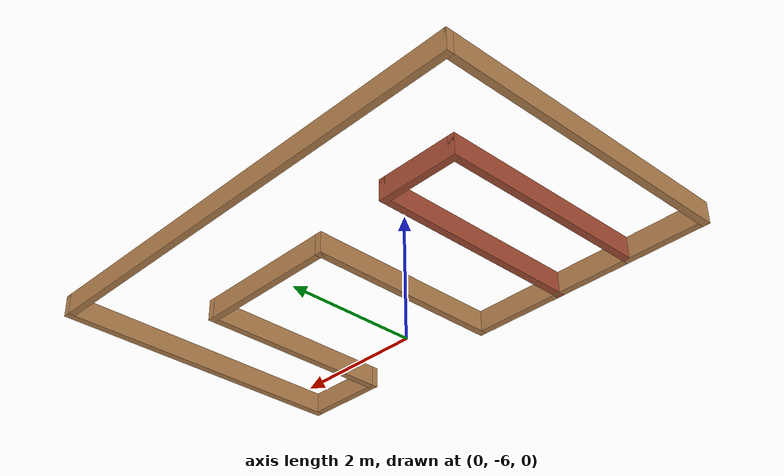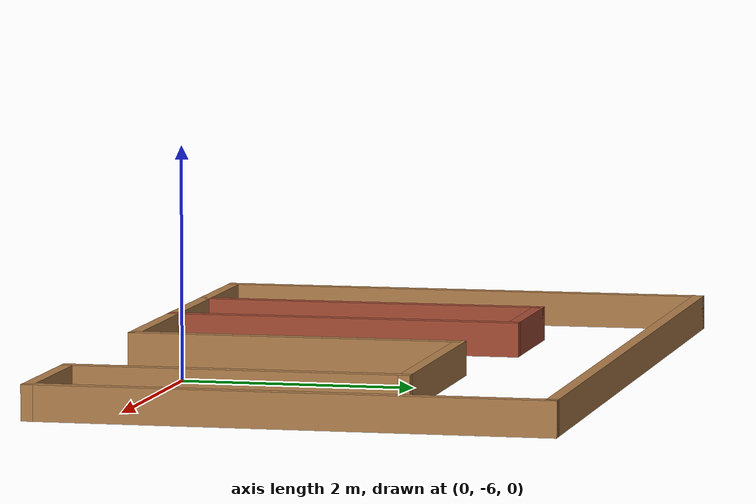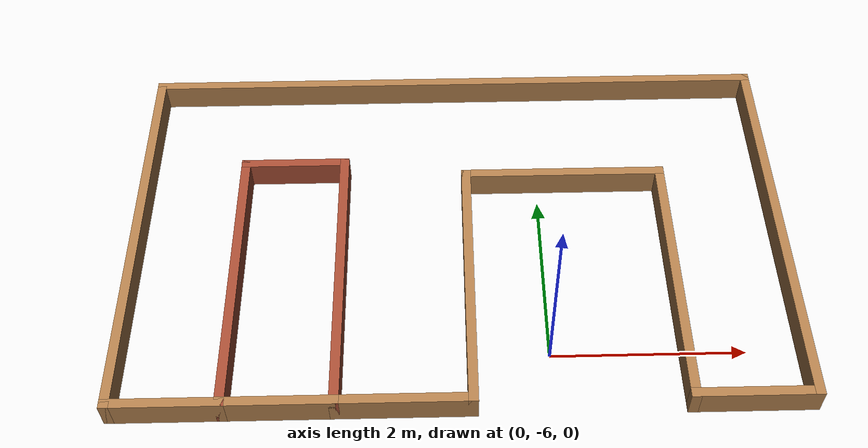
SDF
<?xml version='1.0'?>
<sdf version='1.7'>
  <model name='new_stage_cross01'>
    <pose>-0.892 -3.338 0 0 -0 0</pose>
    <link name='Wall_0'>
      <collision name='Wall_0_Collision'>
        <geometry>
          <box>
            <size>7 0.1 0.3</size>
          </box>
        </geometry>
        <pose>0 0 0.15 0 -0 0</pose>
      </collision>
      <visual name='Wall_0_Visual'>
        <pose>0 0 0.15 0 -0 0</pose>
        <geometry>
          <box>
            <size>7 0.1 0.3</size>
          </box>
        </geometry>
        <material>
          <script>
            <uri>file://media/materials/scripts/gazebo.material</uri>
            <name>Gazebo/Wood</name>
          </script>
          <ambient>1 0.764706 0.305882 1</ambient>
        </material>
        <meta>
          <layer>0</layer>
        </meta>
      </visual>
      <pose>-0 1.012 0 0 -0 0</pose>
    </link>
    <link name='Wall_2'>
      <collision name='Wall_2_Collision'>
        <geometry>
          <box>
            <size>4.4 0.1 0.3</size>
          </box>
        </geometry>
        <pose>0 0 0.15 0 -0 0</pose>
      </collision>
      <visual name='Wall_2_Visual'>
        <pose>0 0 0.15 0 -0 0</pose>
        <geometry>
          <box>
            <size>4.4 0.1 0.3</size>
          </box>
        </geometry>
        <material>
          <script>
            <uri>file://media/materials/scripts/gazebo.material</uri>
            <name>Gazebo/Wood</name>
          </script>
          <ambient>1 0.764706 0.305882 1</ambient>
        </material>
        <meta>
          <layer>0</layer>
        </meta>
      </visual>
      <pose>-3.45 -1.138 0 0 -0 -1.5708</pose>
    </link>
    <link name='Wall_27'>
      <collision name='Wall_27_Collision'>
        <geometry>
          <box>
            <size>4.4 0.1 0.3</size>
          </box>
        </geometry>
        <pose>0 0 0.15 0 -0 0</pose>
      </collision>
      <visual name='Wall_27_Visual'>
        <pose>0 0 0.15 0 -0 0</pose>
        <geometry>
          <box>
            <size>4.4 0.1 0.3</size>
          </box>
        </geometry>
        <material>
          <script>
            <uri>file://media/materials/scripts/gazebo.material</uri>
            <name>Gazebo/Wood</name>
          </script>
          <ambient>1 0.764706 0.305882 1</ambient>
        </material>
        <meta>
          <layer>0</layer>
        </meta>
      </visual>
      <pose>3.45 -1.138 0 0 -0 -1.5708</pose>
    </link>
    <link name='Wall_29'>
      <collision name='Wall_29_Collision'>
        <geometry>
          <box>
            <size>1.3 0.1 0.3</size>
          </box>
        </geometry>
        <pose>0 0 0.15 0 -0 0</pose>
      </collision>
      <visual name='Wall_29_Visual'>
        <pose>0 0 0.15 0 -0 0</pose>
        <geometry>
          <box>
            <size>1.3 0.1 0.3</size>
          </box>
        </geometry>
        <material>
          <script>
            <uri>file://media/materials/scripts/gazebo.material</uri>
            <name>Gazebo/Wood</name>
          </script>
          <ambient>1 0.764706 0.305882 1</ambient>
        </material>
        <meta>
          <layer>0</layer>
        </meta>
      </visual>
      <pose>2.85 -3.288 0 0 -0 3.14159</pose>
    </link>
    <link name='Wall_35'>
      <collision name='Wall_35_Collision'>
        <geometry>
          <box>
            <size>1.2 0.1 0.3</size>
          </box>
        </geometry>
        <pose>0 0 0.15 0 -0 0</pose>
      </collision>
      <visual name='Wall_35_Visual'>
        <pose>0 0 0.15 0 -0 0</pose>
        <geometry>
          <box>
            <size>1.2 0.1 0.3</size>
          </box>
        </geometry>
        <material>
          <script>
            <uri>file://media/materials/scripts/gazebo.material</uri>
            <name>Gazebo/Wood</name>
          </script>
          <ambient>1 0.764706 0.305882 1</ambient>
        </material>
        <meta>
          <layer>0</layer>
        </meta>
      </visual>
      <pose>-2.9 -3.288 0 0 -0 0</pose>
    </link>
    <link name='Wall_37'>
      <collision name='Wall_37_Collision'>
        <geometry>
          <box>
            <size>3.15 0.1 0.3</size>
          </box>
        </geometry>
        <pose>0 0 0.15 0 -0 0</pose>
      </collision>
      <visual name='Wall_37_Visual'>
        <pose>0 0 0.15 0 -0 0</pose>
        <geometry>
          <box>
            <size>3.15 0.1 0.3</size>
          </box>
        </geometry>
        <material>
          <script>
            <uri>file://media/materials/scripts/gazebo.material</uri>
            <name>Gazebo/Bricks</name>
          </script>
          <ambient>0.435294 0.796078 0.67451 1</ambient>
        </material>
        <meta>
          <layer>0</layer>
        </meta>
      </visual>
      <pose>-2.35 -1.763 0 0 -0 1.5708</pose>
    </link>
    <link name='Wall_39'>
      <collision name='Wall_39_Collision'>
        <geometry>
          <box>
            <size>1.2 0.1 0.3</size>
          </box>
        </geometry>
        <pose>0 0 0.15 0 -0 0</pose>
      </collision>
      <visual name='Wall_39_Visual'>
        <pose>0 0 0.15 0 -0 0</pose>
        <geometry>
          <box>
            <size>1.2 0.1 0.3</size>
          </box>
        </geometry>
        <material>
          <script>
            <uri>file://media/materials/scripts/gazebo.material</uri>
            <name>Gazebo/Bricks</name>
          </script>
          <ambient>0.435294 0.796078 0.67451 1</ambient>
        </material>
        <meta>
          <layer>0</layer>
        </meta>
      </visual>
      <pose>-1.8 -0.238 0 0 -0 0</pose>
    </link>
    <link name='Wall_42'>
      <collision name='Wall_42_Collision'>
        <geometry>
          <box>
            <size>3.15 0.1 0.3</size>
          </box>
        </geometry>
        <pose>0 0 0.15 0 -0 0</pose>
      </collision>
      <visual name='Wall_42_Visual'>
        <pose>0 0 0.15 0 -0 0</pose>
        <geometry>
          <box>
            <size>3.15 0.1 0.3</size>
          </box>
        </geometry>
        <material>
          <script>
            <uri>file://media/materials/scripts/gazebo.material</uri>
            <name>Gazebo/Bricks</name>
          </script>
          <ambient>0.435294 0.796078 0.67451 1</ambient>
        </material>
        <meta>
          <layer>0</layer>
        </meta>
      </visual>
      <pose>-1.25 -1.763 0 0 -0 -1.5708</pose>
    </link>
    <link name='Wall_47'>
      <collision name='Wall_47_Collision'>
        <geometry>
          <box>
            <size>1.45 0.1 0.3</size>
          </box>
        </geometry>
        <pose>0 0 0.15 0 -0 0</pose>
      </collision>
      <visual name='Wall_47_Visual'>
        <pose>0 0 0.15 0 -0 0</pose>
        <geometry>
          <box>
            <size>1.45 0.1 0.3</size>
          </box>
        </geometry>
        <material>
          <script>
            <uri>file://media/materials/scripts/gazebo.material</uri>
            <name>Gazebo/Wood</name>
          </script>
          <ambient>1 0.764706 0.305882 1</ambient>
        </material>
        <meta>
          <layer>0</layer>
        </meta>
      </visual>
      <pose>-0.575 -3.288 0 0 -0 0</pose>
    </link>
    <link name='Wall_53'>
      <collision name='Wall_53_Collision'>
        <geometry>
          <box>
            <size>2.95 0.1 0.3</size>
          </box>
        </geometry>
        <pose>0 0 0.15 0 -0 0</pose>
      </collision>
      <visual name='Wall_53_Visual'>
        <pose>0 0 0.15 0 -0 0</pose>
        <geometry>
          <box>
            <size>2.95 0.1 0.3</size>
          </box>
        </geometry>
        <material>
          <script>
            <uri>file://media/materials/scripts/gazebo.material</uri>
            <name>Gazebo/Wood</name>
          </script>
          <ambient>1 0.764706 0.305882 1</ambient>
        </material>
        <meta>
          <layer>0</layer>
        </meta>
      </visual>
      <pose>0.1 -1.863 0 0 -0 1.5708</pose>
    </link>
    <link name='Wall_55'>
      <collision name='Wall_55_Collision'>
        <geometry>
          <box>
            <size>2.95 0.1 0.3</size>
          </box>
        </geometry>
        <pose>0 0 0.15 0 -0 0</pose>
      </collision>
      <visual name='Wall_55_Visual'>
        <pose>0 0 0.15 0 -0 0</pose>
        <geometry>
          <box>
            <size>2.95 0.1 0.3</size>
          </box>
        </geometry>
        <material>
          <script>
            <uri>file://media/materials/scripts/gazebo.material</uri>
            <name>Gazebo/Wood</name>
          </script>
          <ambient>1 0.764706 0.305882 1</ambient>
        </material>
        <meta>
          <layer>0</layer>
        </meta>
      </visual>
      <pose>2.25 -1.863 0 0 -0 1.5708</pose>
    </link>
    <link name='Wall_57'>
      <collision name='Wall_57_Collision'>
        <geometry>
          <box>
            <size>2.25 0.1 0.3</size>
          </box>
        </geometry>
        <pose>0 0 0.15 0 -0 0</pose>
      </collision>
      <visual name='Wall_57_Visual'>
        <pose>0 0 0.15 0 -0 0</pose>
        <geometry>
          <box>
            <size>2.25 0.1 0.3</size>
          </box>
        </geometry>
        <material>
          <script>
            <uri>file://media/materials/scripts/gazebo.material</uri>
            <name>Gazebo/Wood</name>
          </script>
          <ambient>1 0.764706 0.305882 1</ambient>
        </material>
        <meta>
          <layer>0</layer>
        </meta>
      </visual>
      <pose>1.175 -0.438 0 0 -0 0</pose>
    </link>
    <link name='Wall_59'>
      <collision name='Wall_59_Collision'>
        <geometry>
          <box>
            <size>1.2 0.1 0.3</size>
          </box>
        </geometry>
        <pose>0 0 0.15 0 -0 0</pose>
      </collision>
      <visual name='Wall_59_Visual'>
        <pose>0 0 0.15 0 -0 0</pose>
        <geometry>
          <box>
            <size>1.2 0.1 0.3</size>
          </box>
        </geometry>
        <material>
          <script>
            <uri>file://media/materials/scripts/gazebo.material</uri>
            <name>Gazebo/Wood</name>
          </script>
          <ambient>1 0.764706 0.305882 1</ambient>
        </material>
        <meta>
          <layer>0</layer>
        </meta>
      </visual>
      <pose>-1.8 -3.288 0 0 -0 0</pose>
    </link>
    <static>1</static>
  </model>
</sdf>
